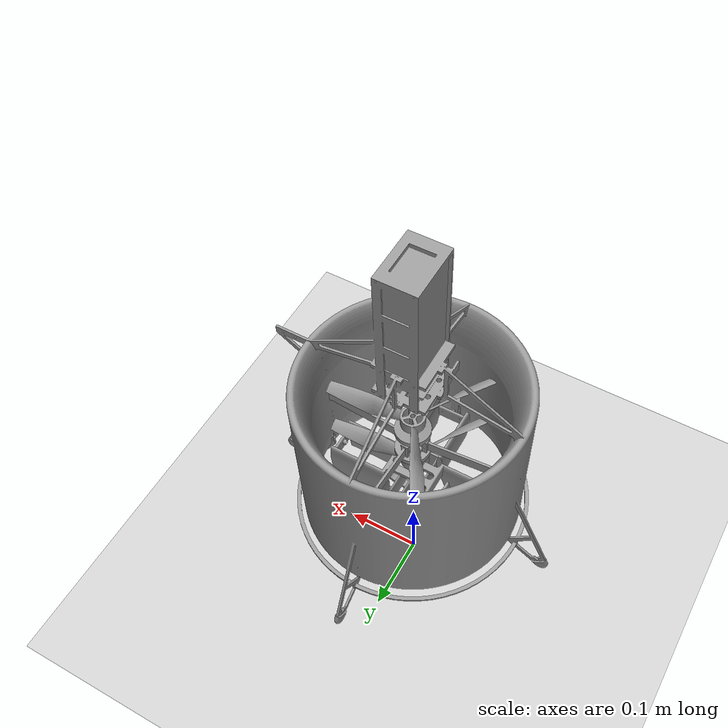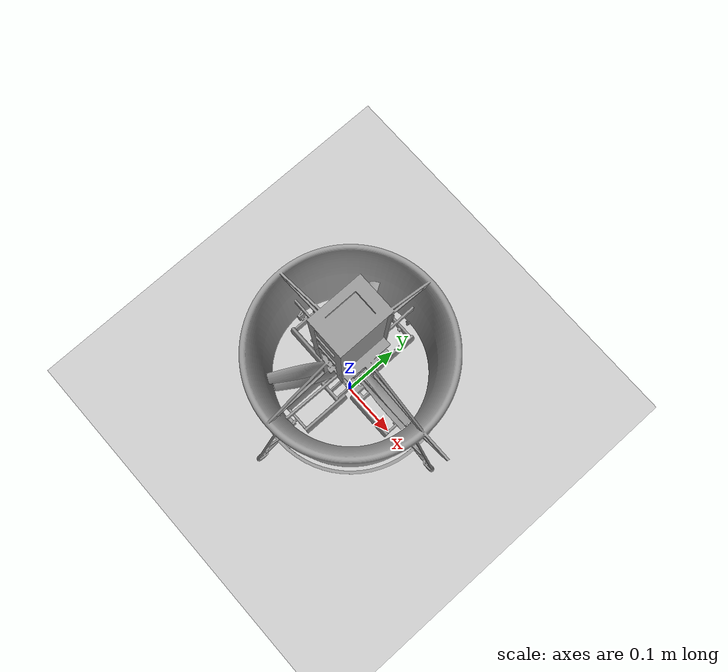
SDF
<?xml version="1.0" ?>
<sdf version="1.4">
  <world name="default">
    <gui>
      <!-- A plugin for controlling the ducted_fan with the keyboard -->
      <plugin name="ductedfan_keyboard" filename="libDFGUIPlugin.so"/>
      <camera name="user_camera">
        <pose>-16 0 4 0 0 0</pose>
      </camera>
    </gui>
    <include>
      <uri>model://sun</uri>
    </include>
    <include>
      <uri>model://ground_plane</uri>
    </include>
    <include>
      <uri>model://ductedfan</uri>
    </include>
  </world>
</sdf>

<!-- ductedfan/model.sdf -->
<sdf version='1.5'>
  <model name='ductedfan'>
    <pose>0 0 0.4 0 0 0</pose>
    <link name='base_link'>
      <inertial>
        <mass>1.51082</mass>
        <inertia>
          <ixx>0.0276508</ixx>
          <ixy>0</ixy>
          <ixz>0.00026669</ixz>
          <iyy>0.0275263</iyy>
          <iyz>0.00028741</iyz>
          <izz>0.00619679</izz>
        </inertia>
        <pose>-4.1e-05 -7.6e-05 0.042069 0 -0 0</pose>
      </inertial>
      <pose>0 0 0 0 -0 0</pose>
      <gravity>1</gravity>
      <self_collide>0</self_collide>
      <kinematic>0</kinematic>
      <enable_wind>0</enable_wind>
      <visual name='visual'>
        <pose>0 0 0 0 -0 0</pose>
        <geometry>
          <mesh>
            <uri>/home/mch/gazebo/models/ductedfan/meshes/DF - Product-gazebo-1.STL</uri>
            <scale>1 1 1</scale>
          </mesh>
        </geometry>
        <material>
          <lighting>1</lighting>
          <script>
            <uri>file://media/materials/scripts/gazebo.material</uri>
            <name>Gazebo/Grey</name>
          </script>
          <shader type='pixel'>
            <normal_map>__default__</normal_map>
          </shader>
          <ambient>0.3 0.3 0.3 1</ambient>
          <diffuse>0.7 0.7 0.7 1</diffuse>
          <specular>0.01 0.01 0.01 1</specular>
          <emissive>0 0 0 1</emissive>
        </material>
        <transparency>0</transparency>
        <cast_shadows>1</cast_shadows>
      </visual>
      <collision name='collision'>
        <laser_retro>0</laser_retro>
        <max_contacts>10</max_contacts>
        <pose>0 0 0 0 -0 0</pose>
        <geometry>
          <mesh>
            <uri>/home/mch/gazebo/models/ductedfan/meshes/DF - Product-gazebo-1.STL</uri>
            <scale>1 1 1</scale>
          </mesh>
        </geometry>
        <surface>
          <friction>
            <ode>
              <mu>1</mu>
              <mu2>1</mu2>
              <fdir1>0 0 0</fdir1>
              <slip1>0</slip1>
              <slip2>0</slip2>
            </ode>
            <torsional>
              <coefficient>1</coefficient>
              <patch_radius>0</patch_radius>
              <surface_radius>0</surface_radius>
              <use_patch_radius>1</use_patch_radius>
              <ode>
                <slip>0</slip>
              </ode>
            </torsional>
          </friction>
          <bounce>
            <restitution_coefficient>0</restitution_coefficient>
            <threshold>1e+06</threshold>
          </bounce>
          <contact>
            <collide_without_contact>0</collide_without_contact>
            <collide_without_contact_bitmask>1</collide_without_contact_bitmask>
            <collide_bitmask>1</collide_bitmask>
            <ode>
              <soft_cfm>0</soft_cfm>
              <soft_erp>0.2</soft_erp>
              <kp>1e+13</kp>
              <kd>1</kd>
              <max_vel>0.01</max_vel>
              <min_depth>0</min_depth>
            </ode>
            <bullet>
              <split_impulse>1</split_impulse>
              <split_impulse_penetration_threshold>-0.01</split_impulse_penetration_threshold>
              <soft_cfm>0</soft_cfm>
              <soft_erp>0.2</soft_erp>
              <kp>1e+13</kp>
              <kd>1</kd>
            </bullet>
          </contact>
        </surface>
      </collision>
    </link>
    <link name='csroll'>
      <inertial>
        <mass>0.138453</mass>
        <inertia>
          <ixx>0.00066011</ixx>
          <ixy>0</ixy>
          <ixz>0</ixz>
          <iyy>8.528e-05</iyy>
          <iyz>0</iyz>
          <izz>0.00068962</izz>
        </inertia>
        <pose>-4.1e-05 0.000748 -0.207851 0 -0 0</pose>
      </inertial>
      <pose>0 0 0 0 -0 0</pose>
      <gravity>1</gravity>
      <self_collide>0</self_collide>
      <kinematic>0</kinematic>
      <enable_wind>0</enable_wind>
      <visual name='visual'>
        <pose>0 0 0 0 -0 0</pose>
        <geometry>
          <mesh>
            <uri>/home/mch/gazebo/models/ductedfan/meshes/DF - control surface-60-67-3.STL</uri>
            <scale>1 1 1</scale>
          </mesh>
        </geometry>
        <material>
          <lighting>1</lighting>
          <script>
            <uri>file://media/materials/scripts/gazebo.material</uri>
            <name>Gazebo/Grey</name>
          </script>
          <shader type='pixel'>
            <normal_map>__default__</normal_map>
          </shader>
          <ambient>0.3 0.3 0.3 1</ambient>
          <diffuse>0.7 0.7 0.7 1</diffuse>
          <specular>0.01 0.01 0.01 1</specular>
          <emissive>0 0 0 1</emissive>
        </material>
        <transparency>0</transparency>
        <cast_shadows>1</cast_shadows>
      </visual>
    </link>
    <link name='cspitch'>
      <inertial>
        <mass>0.149682</mass>
        <inertia>
          <ixx>0.00066011</ixx>
          <ixy>0</ixy>
          <ixz>0</ixz>
          <iyy>8.5e-05</iyy>
          <iyz>0</iyz>
          <izz>0.000689</izz>
        </inertia>
        <pose>0 0 0 0 -0 0</pose>
      </inertial>
      <pose>0 0 0 0 -0 0</pose>
      <gravity>1</gravity>
      <self_collide>0</self_collide>
      <kinematic>0</kinematic>
      <enable_wind>0</enable_wind>
      <visual name='visual'>
        <pose>0 0 0 0 -0 0</pose>
        <geometry>
          <mesh>
            <uri>/home/mch/gazebo/models/ductedfan/meshes/DF - control surface-60-2-1.STL</uri>
            <scale>1 1 1</scale>
          </mesh>
        </geometry>
        <material>
          <lighting>1</lighting>
          <script>
            <uri>file://media/materials/scripts/gazebo.material</uri>
            <name>Gazebo/Grey</name>
          </script>
          <shader type='pixel'>
            <normal_map>__default__</normal_map>
          </shader>
          <emissive>0 0 0 1</emissive>
          <ambient>0.3 0.3 0.3 1</ambient>
          <diffuse>0.7 0.7 0.7 1</diffuse>
          <specular>0.01 0.01 0.01 1</specular>
        </material>
        <transparency>0</transparency>
        <cast_shadows>1</cast_shadows>
      </visual>
    </link>
    <link name='r1'>
      <inertial>
        <mass>0.015678</mass>
        <inertia>
          <ixx>1.851e-05</ixx>
          <ixy>0</ixy>
          <ixz>0</ixz>
          <iyy>1.855e-05</iyy>
          <iyz>0</iyz>
          <izz>3.648e-05</izz>
        </inertia>
        <pose>0.000403 0.000759 -0.071513 0 -0 0</pose>
      </inertial>
      <pose>0 0 0 0 -0 0</pose>
      <gravity>1</gravity>
      <self_collide>0</self_collide>
      <kinematic>0</kinematic>
      <enable_wind>0</enable_wind>
      <visual name='visual'>
        <pose>0 0 0 0 -0 0</pose>
        <geometry>
          <mesh>
            <uri>/home/mch/gazebo/models/ductedfan/meshes/DF - fan-1.STL</uri>
            <scale>1 1 1</scale>
          </mesh>
        </geometry>
        <material>
          <lighting>1</lighting>
          <script>
            <uri>file://media/materials/scripts/gazebo.material</uri>
            <name>Gazebo/Grey</name>
          </script>
          <shader type='pixel'>
            <normal_map>__default__</normal_map>
          </shader>
          <ambient>0.3 0.3 0.3 1</ambient>
          <diffuse>0.7 0.7 0.7 1</diffuse>
          <specular>0.01 0.01 0.01 1</specular>
          <emissive>0 0 0 1</emissive>
        </material>
        <transparency>0</transparency>
        <cast_shadows>1</cast_shadows>
      </visual>
    </link>
    <link name='r2'>
      <inertial>
        <mass>0.015678</mass>
        <inertia>
          <ixx>1.851e-05</ixx>
          <ixy>0</ixy>
          <ixz>0</ixz>
          <iyy>1.855e-05</iyy>
          <iyz>0</iyz>
          <izz>3.648e-05</izz>
        </inertia>
        <pose>0.000403 0.000759 -0.154513 0 -0 0</pose>
      </inertial>
      <pose>0 0 0 0 -0 0</pose>
      <gravity>1</gravity>
      <self_collide>0</self_collide>
      <kinematic>0</kinematic>
      <enable_wind>0</enable_wind>
      <visual name='visual'>
        <pose>0 0 0 0 -0 0</pose>
        <geometry>
          <mesh>
            <uri>/home/mch/gazebo/models/ductedfan/meshes/DF - fan-2.STL</uri>
            <scale>1 1 1</scale>
          </mesh>
        </geometry>
        <material>
          <lighting>1</lighting>
          <script>
            <uri>file://media/materials/scripts/gazebo.material</uri>
            <name>Gazebo/Grey</name>
          </script>
          <shader type='pixel'>
            <normal_map>__default__</normal_map>
          </shader>
          <ambient>0.3 0.3 0.3 1</ambient>
          <diffuse>0.7 0.7 0.7 1</diffuse>
          <specular>0.01 0.01 0.01 1</specular>
          <emissive>0 0 0 1</emissive>
        </material>
        <transparency>0</transparency>
        <cast_shadows>1</cast_shadows>
      </visual>
    </link>
    <joint name='cspitch_joint' type='revolute'>
      <parent>base_link</parent>
      <child>cspitch</child>
      <pose>0.00037 0 -0.19763 0 -0 0</pose>
      <axis>
        <xyz>0 1 0</xyz>
        <limit>
          <lower>-0.3491</lower>
          <upper>0.3491</upper>
          <effort>-1</effort>
          <velocity>-1</velocity>
        </limit>
        <dynamics>
          <spring_reference>0</spring_reference>
          <spring_stiffness>0</spring_stiffness>
          <damping>1</damping>
          <friction>0</friction>
        </dynamics>
      </axis>
      <physics>
        <ode>
          <limit>
            <cfm>0</cfm>
            <erp>0.2</erp>
          </limit>
          <suspension>
            <cfm>0</cfm>
            <erp>0.2</erp>
          </suspension>
        </ode>
      </physics>
    </joint>
    <joint name='csroll_joint' type='revolute'>
      <parent>base_link</parent>
      <child>csroll</child>
      <pose>0 0.00074 -0.19763 0 -0 0</pose>
      <axis>
        <xyz>1 0 0</xyz>
        <limit>
          <lower>-0.3491</lower>
          <upper>0.3491</upper>
          <effort>-1</effort>
          <velocity>-1</velocity>
        </limit>
        <dynamics>
          <spring_reference>0</spring_reference>
          <spring_stiffness>0</spring_stiffness>
          <damping>1</damping>
          <friction>0</friction>
        </dynamics>
      </axis>
      <physics>
        <ode>
          <limit>
            <cfm>0</cfm>
            <erp>0.2</erp>
          </limit>
          <suspension>
            <cfm>0</cfm>
            <erp>0.2</erp>
          </suspension>
        </ode>
      </physics>
    </joint>
    <joint name='r1_joint' type='revolute'>
      <parent>base_link</parent>
      <child>r1</child>
      <pose>0.000403 0.000759 -0.071513 0 -0 0</pose>
      <axis>
        <xyz>0 0 -1</xyz>
        <limit>
          <lower>-1.79769e+308</lower>
          <upper>1.79769e+308</upper>
          <effort>-1</effort>
          <velocity>-1</velocity>
        </limit>
        <dynamics>
          <spring_reference>0</spring_reference>
          <spring_stiffness>0</spring_stiffness>
          <damping>0.001</damping>
          <friction>0</friction>
        </dynamics>
      </axis>
      <physics>
        <ode>
          <limit>
            <cfm>0</cfm>
            <erp>0.2</erp>
          </limit>
          <suspension>
            <cfm>0</cfm>
            <erp>0.2</erp>
          </suspension>
        </ode>
      </physics>
    </joint>
    <joint name='r2_joint' type='revolute'>
      <parent>base_link</parent>
      <child>r2</child>
      <pose>0.000403 0.000759 -0.154513 0 -0 0</pose>
      <axis>
        <xyz>0 0 1</xyz>
        <limit>
          <lower>-1.79769e+308</lower>
          <upper>1.79769e+308</upper>
          <effort>-1</effort>
          <velocity>-1</velocity>
        </limit>
        <dynamics>
          <spring_reference>0</spring_reference>
          <spring_stiffness>0</spring_stiffness>
          <damping>0.001</damping>
          <friction>0</friction>
        </dynamics>
      </axis>
      <physics>
        <ode>
          <limit>
            <cfm>0</cfm>
            <erp>0.2</erp>
          </limit>
          <suspension>
            <cfm>0</cfm>
            <erp>0.2</erp>
          </suspension>
        </ode>
      </physics>
    </joint>
    <static>0</static>
    <allow_auto_disable>1</allow_auto_disable>
    <plugin name='ductedfan_control_plugin' filename='libDFPlugin.so'>
      <r1>r1_joint</r1>
      <r2>r2_joint</r2>
      <propeller_max_rpm>2500</propeller_max_rpm>
      <csroll>csroll_joint</csroll>
	    <cspitch>cspitch_joint</cspitch>
      <propeller_p_gain>0.01</propeller_p_gain>
      <propeller_i_gain>0</propeller_i_gain>
      <propeller_d_gain>0</propeller_d_gain>
      <surfaces_p_gain>10</surfaces_p_gain>
      <surfaces_i_gain>0</surfaces_i_gain>
      <surfaces_d_gain>0</surfaces_d_gain>
    </plugin>
    <plugin name="r1_1_blade_plugin" filename="libLiftDragPlugin.so">
      <a0>0.4</a0>
      <cla>4.752798721</cla>
      <cda>0.6417112299</cda>
      <cma>0</cma>
      <alpha_stall>1.5</alpha_stall>
      <cla_stall>-3.85</cla_stall>
      <cda_stall>-0.9233984055</cda_stall>
      <cma_stall>0</cma_stall>
      <cp>0.05 0 0</cp>
      <area>0.1</area>
      <air_density>1.2041</air_density>
      <forward>0 -1 0</forward>
      <upward>0 0 1</upward>
      <link_name>r1</link_name>
    </plugin>
    <plugin name="r1_2_blade_plugin" filename="libLiftDragPlugin.so">
      <a0>0.4</a0>
      <cla>4.752798721</cla>
      <cda>0.6417112299</cda>
      <cma>0</cma>
      <alpha_stall>1.5</alpha_stall>
      <cla_stall>-3.85</cla_stall>
      <cda_stall>-0.9233984055</cda_stall>
      <cma_stall>0</cma_stall>
      <cp>-0.025 -0.0433 0</cp>
      <area>0.1</area>
      <air_density>1.2041</air_density>
      <forward>-0.866 0.5 0</forward>
      <upward>0 0 1</upward>
      <link_name>r1</link_name>
    </plugin>
    <plugin name="r1_3_blade_plugin" filename="libLiftDragPlugin.so">
      <a0>0.4</a0>
      <cla>4.752798721</cla>
      <cda>0.6417112299</cda>
      <cma>0</cma>
      <alpha_stall>1.5</alpha_stall>
      <cla_stall>-3.85</cla_stall>
      <cda_stall>-0.9233984055</cda_stall>
      <cma_stall>0</cma_stall>
      <cp>-0.025 0.0433 0</cp>
      <area>0.1</area>
      <air_density>1.2041</air_density>
      <forward>0.866 0.5 0</forward>
      <upward>0 0 1</upward>
      <link_name>r1</link_name>
    </plugin>

    <plugin name="r2_1_blade_plugin" filename="libLiftDragPlugin.so">
      <a0>0.4</a0>
      <cla>4.752798721</cla>
      <cda>0.6417112299</cda>
      <cma>0</cma>
      <alpha_stall>1.5</alpha_stall>
      <cla_stall>-3.85</cla_stall>
      <cda_stall>-0.9233984055</cda_stall>
      <cma_stall>0</cma_stall>
      <cp>0.05 0 0</cp>
      <area>0.1</area>
      <air_density>1.2041</air_density>
      <forward>0 1 0</forward>
      <upward>0 0 1</upward>
      <link_name>r2</link_name>
    </plugin>
    <plugin name="r2_2_blade_plugin" filename="libLiftDragPlugin.so">
      <a0>0.4</a0>
      <cla>4.752798721</cla>
      <cda>0.6417112299</cda>
      <cma>0</cma>
      <alpha_stall>1.5</alpha_stall>
      <cla_stall>-3.85</cla_stall>
      <cda_stall>-0.9233984055</cda_stall>
      <cma_stall>0</cma_stall>
      <cp>-0.025 -0.0433 0</cp>
      <area>0.1</area>
      <air_density>1.2041</air_density>
      <forward>0.866 -0.5 0</forward>
      <upward>0 0 1</upward>
      <link_name>r2</link_name>
    </plugin>
    <plugin name="r2_3_blade_plugin" filename="libLiftDragPlugin.so">
      <a0>0.4</a0>
      <cla>4.752798721</cla>
      <cda>0.6417112299</cda>
      <cma>0</cma>
      <alpha_stall>1.5</alpha_stall>
      <cla_stall>-3.85</cla_stall>
      <cda_stall>-0.9233984055</cda_stall>
      <cma_stall>0</cma_stall>
      <cp>-0.025 0.0433 0</cp>
      <area>0.1</area>
      <air_density>1.2041</air_density>
      <forward>-0.866 -0.5 0</forward>
      <upward>0 0 1</upward>
      <link_name>r2</link_name>
    </plugin>

    <plugin name="csroll_plugin" filename="libLiftDragPlugin.so">
      <propeller_link_name>r1</propeller_link_name>
      <propeller_joint>r1_joint</propeller_joint>
      <a0>0</a0>
      <cla>4.752798721</cla>
      <cda>0.6417112299</cda>
      <cma>-1.8</cma>
      <alpha_stall>0.6</alpha_stall>
      <cla_stall>-3.85</cla_stall>
      <cda_stall>-0.9233984055</cda_stall>
      <cma_stall>0</cma_stall>
      <cp>0 0 -0.22</cp>
      <area>2.03458</area>
      <air_density>1.2041</air_density>
      <forward>0 0 1</forward>
      <upward>0 -1 0</upward>
      <link_name>base_link</link_name>
      <control_joint_name>csroll_joint</control_joint_name>
      <control_joint_rad_to_cl>4.0</control_joint_rad_to_cl>
    </plugin>
    <plugin name="cspitch_plugin" filename="libLiftDragPlugin.so">
      <propeller_link_name>r1</propeller_link_name>
      <propeller_joint>r1_joint</propeller_joint>
      <a0>0</a0>
      <cla>4.752798721</cla>
      <cda>0.6417112299</cda>
      <cma>-1.8</cma>
      <alpha_stall>0.6</alpha_stall>
      <cla_stall>-3.85</cla_stall>
      <cda_stall>-0.9233984055</cda_stall>
      <cma_stall>0</cma_stall>
      <cp>0 0 -0.22</cp>
      <area>1.5329</area>
      <air_density>1.2041</air_density>
      <forward>0 0 1</forward>
      <upward>1 0 0</upward>
      <link_name>base_link</link_name>
      <control_joint_name>cspitch_joint</control_joint_name>
      <control_joint_rad_to_cl>4.0</control_joint_rad_to_cl>
    </plugin>
  </model>
</sdf>
